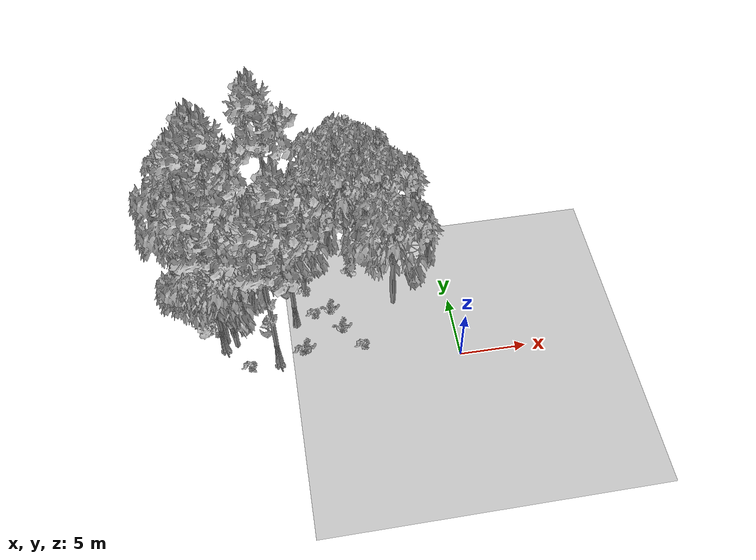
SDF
<sdf version="1.7">
 <world name="default">
  <model name="ground_plane">
   <static>1</static>
   <link name="link">
    <collision name="collision">
     <pose>-50 0 0 0 -0 0</pose>
     <geometry><plane><normal>0 0 1</normal><size>80 80</size></plane></geometry>
     <surface><contact><ode><min_depth>0.01</min_depth><max_vel>0</max_vel></ode></contact></surface>
    </collision>
    <visual name="grass">
     <cast_shadows>0</cast_shadows>
     <geometry>
      <mesh>
       <scale>0.46714285714285714 0.46714285714285714 0.1</scale>
       <uri>file://grass_plane/meshes/grass_plane.dae</uri>
      </mesh>
     </geometry>
    </visual>
   </link>
  </model>
  <model name="Tree 18">
   <static>1</static>
   <pose>-17.58918415399928 3.471792968988524 0 1.57079 -0 0</pose>
   <link name="link">
    <collision name="collision">
     <geometry><mesh><scale>3.5 5 3.5</scale><uri>model://tree_9/meshes/tree_9.obj</uri></mesh></geometry>
    </collision>
    <visual name="visual">
     <geometry><mesh><scale>3.5 5 3.5</scale><uri>model://tree_9/meshes/tree_9.obj</uri></mesh></geometry>
    </visual>
   </link>
  </model>
  <model name="Tree 19">
   <static>1</static>
   <pose>-18.112532954256856 8.733711655006111 0 1.57079 -0 0</pose>
   <link name="link">
    <collision name="collision">
     <geometry><mesh><scale>3.5 5 3.5</scale><uri>model://tree_9/meshes/tree_9.obj</uri></mesh></geometry>
    </collision>
    <visual name="visual">
     <geometry><mesh><scale>3.5 5 3.5</scale><uri>model://tree_9/meshes/tree_9.obj</uri></mesh></geometry>
    </visual>
   </link>
  </model>
  <model name="Tree 28">
   <static>1</static>
   <pose>-11.109174213286632 7.824460218635878 0 1.57079 -0 0</pose>
   <link name="link">
    <collision name="collision">
     <geometry><mesh><scale>3.5 5 3.5</scale><uri>model://tree_2/meshes/tree_2.obj</uri></mesh></geometry>
    </collision>
    <visual name="visual">
     <geometry><mesh><scale>3.5 5 3.5</scale><uri>model://tree_2/meshes/tree_2.obj</uri></mesh></geometry>
    </visual>
   </link>
  </model>
  <model name="Tree 68">
   <static>1</static>
   <pose>-13.645216727375288 1.5163530789158273 0 1.57079 -0 0</pose>
   <link name="link">
    <collision name="collision">
     <geometry><mesh><scale>3.5 5 3.5</scale><uri>model://tree_9/meshes/tree_9.obj</uri></mesh></geometry>
    </collision>
    <visual name="visual">
     <geometry><mesh><scale>3.5 5 3.5</scale><uri>model://tree_9/meshes/tree_9.obj</uri></mesh></geometry>
    </visual>
   </link>
  </model>
  <model name="Tree 104">
   <static>1</static>
   <pose>-12.006702500617696 4.661444653478988 0 1.57079 -0 0</pose>
   <link name="link">
    <collision name="collision">
     <geometry><mesh><scale>3.5 5 3.5</scale><uri>model://tree_9/meshes/tree_9.obj</uri></mesh></geometry>
    </collision>
    <visual name="visual">
     <geometry><mesh><scale>3.5 5 3.5</scale><uri>model://tree_9/meshes/tree_9.obj</uri></mesh></geometry>
    </visual>
   </link>
  </model>
  <model name="Tree 123">
   <static>1</static>
   <pose>-16.893930237728235 4.317296271349193 0 1.57079 -0 0</pose>
   <link name="link">
    <collision name="collision">
     <geometry><mesh><scale>3.5 5 3.5</scale><uri>model://tree_2/meshes/tree_2.obj</uri></mesh></geometry>
    </collision>
    <visual name="visual">
     <geometry><mesh><scale>3.5 5 3.5</scale><uri>model://tree_2/meshes/tree_2.obj</uri></mesh></geometry>
    </visual>
   </link>
  </model>
  <model name="Tree 158">
   <static>1</static>
   <pose>-16.37620693387407 10.21964849119206 0 1.57079 -0 0</pose>
   <link name="link">
    <collision name="collision">
     <geometry><mesh><scale>3.5 5 3.5</scale><uri>model://tree_9/meshes/tree_9.obj</uri></mesh></geometry>
    </collision>
    <visual name="visual">
     <geometry><mesh><scale>3.5 5 3.5</scale><uri>model://tree_9/meshes/tree_9.obj</uri></mesh></geometry>
    </visual>
   </link>
  </model>
  <model name="Tree 171">
   <static>1</static>
   <pose>-7.32146004804688 10.34876763070691 0 1.57079 -0 0</pose>
   <link name="link">
    <collision name="collision">
     <geometry><mesh><scale>3.5 5 3.5</scale><uri>model://tree_2/meshes/tree_2.obj</uri></mesh></geometry>
    </collision>
    <visual name="visual">
     <geometry><mesh><scale>3.5 5 3.5</scale><uri>model://tree_2/meshes/tree_2.obj</uri></mesh></geometry>
    </visual>
   </link>
  </model>
  <model name="Tree 186">
   <static>1</static>
   <pose>-12.569851200763186 7.49511392362362 0 1.57079 -0 0</pose>
   <link name="link">
    <collision name="collision">
     <geometry><mesh><scale>3.5 5 3.5</scale><uri>model://tree_2/meshes/tree_2.obj</uri></mesh></geometry>
    </collision>
    <visual name="visual">
     <geometry><mesh><scale>3.5 5 3.5</scale><uri>model://tree_2/meshes/tree_2.obj</uri></mesh></geometry>
    </visual>
   </link>
  </model>
  <model name="Tree 240">
   <static>1</static>
   <pose>-18.806868439616196 9.059733554559308 0 1.57079 -0 0</pose>
   <link name="link">
    <collision name="collision">
     <geometry><mesh><scale>3.5 5 3.5</scale><uri>model://tree_2/meshes/tree_2.obj</uri></mesh></geometry>
    </collision>
    <visual name="visual">
     <geometry><mesh><scale>3.5 5 3.5</scale><uri>model://tree_2/meshes/tree_2.obj</uri></mesh></geometry>
    </visual>
   </link>
  </model>
  <model name="Tree 261">
   <static>1</static>
   <pose>-4.354681947410455 5.620332886805166 0 1.57079 -0 0</pose>
   <link name="link">
    <collision name="collision">
     <geometry><mesh><scale>3.5 5 3.5</scale><uri>model://tree_2/meshes/tree_2.obj</uri></mesh></geometry>
    </collision>
    <visual name="visual">
     <geometry><mesh><scale>3.5 5 3.5</scale><uri>model://tree_2/meshes/tree_2.obj</uri></mesh></geometry>
    </visual>
   </link>
  </model>
  <model name="Tree 272">
   <static>1</static>
   <pose>-17.134975201088437 10.970905959021373 0 1.57079 -0 0</pose>
   <link name="link">
    <collision name="collision">
     <geometry><mesh><scale>3.5 5 3.5</scale><uri>model://tree_9/meshes/tree_9.obj</uri></mesh></geometry>
    </collision>
    <visual name="visual">
     <geometry><mesh><scale>3.5 5 3.5</scale><uri>model://tree_9/meshes/tree_9.obj</uri></mesh></geometry>
    </visual>
   </link>
  </model>
  <model name="Tree 310">
   <static>1</static>
   <pose>-12.90157255862983 13.383570503775786 0 1.57079 -0 0</pose>
   <link name="link">
    <collision name="collision">
     <geometry><mesh><scale>3.5 5 3.5</scale><uri>model://tree_9/meshes/tree_9.obj</uri></mesh></geometry>
    </collision>
    <visual name="visual">
     <geometry><mesh><scale>3.5 5 3.5</scale><uri>model://tree_9/meshes/tree_9.obj</uri></mesh></geometry>
    </visual>
   </link>
  </model>
  <model name="Tree 335">
   <static>1</static>
   <pose>-8.483761706993207 12.09060599628063 0 1.57079 -0 0</pose>
   <link name="link">
    <collision name="collision">
     <geometry><mesh><scale>3.5 5 3.5</scale><uri>model://tree_2/meshes/tree_2.obj</uri></mesh></geometry>
    </collision>
    <visual name="visual">
     <geometry><mesh><scale>3.5 5 3.5</scale><uri>model://tree_2/meshes/tree_2.obj</uri></mesh></geometry>
    </visual>
   </link>
  </model>
  <model name="Tree 342">
   <static>1</static>
   <pose>-19.24218657267701 12.365773465757258 0 1.57079 -0 0</pose>
   <link name="link">
    <collision name="collision">
     <geometry><mesh><scale>3.5 5 3.5</scale><uri>model://tree_2/meshes/tree_2.obj</uri></mesh></geometry>
    </collision>
    <visual name="visual">
     <geometry><mesh><scale>3.5 5 3.5</scale><uri>model://tree_2/meshes/tree_2.obj</uri></mesh></geometry>
    </visual>
   </link>
  </model>
  <model name="Tree 402">
   <static>1</static>
   <pose>-17.44945227126329 3.9603339065239 0 1.57079 -0 0</pose>
   <link name="link">
    <collision name="collision">
     <geometry><mesh><scale>3.5 5 3.5</scale><uri>model://tree_2/meshes/tree_2.obj</uri></mesh></geometry>
    </collision>
    <visual name="visual">
     <geometry><mesh><scale>3.5 5 3.5</scale><uri>model://tree_2/meshes/tree_2.obj</uri></mesh></geometry>
    </visual>
   </link>
  </model>
  <model name="Tree 406">
   <static>1</static>
   <pose>-14.256591895682355 6.695178482633359 0 1.57079 -0 0</pose>
   <link name="link">
    <collision name="collision">
     <geometry><mesh><scale>3.5 5 3.5</scale><uri>model://tree_2/meshes/tree_2.obj</uri></mesh></geometry>
    </collision>
    <visual name="visual">
     <geometry><mesh><scale>3.5 5 3.5</scale><uri>model://tree_2/meshes/tree_2.obj</uri></mesh></geometry>
    </visual>
   </link>
  </model>
  <model name="Tree 513">
   <static>1</static>
   <pose>-16.752196605908598 3.5664650199842924 0 1.57079 -0 0</pose>
   <link name="link">
    <collision name="collision">
     <geometry><mesh><scale>3.5 5 3.5</scale><uri>model://tree_2/meshes/tree_2.obj</uri></mesh></geometry>
    </collision>
    <visual name="visual">
     <geometry><mesh><scale>3.5 5 3.5</scale><uri>model://tree_2/meshes/tree_2.obj</uri></mesh></geometry>
    </visual>
   </link>
  </model>
  <model name="Tree 531">
   <static>1</static>
   <pose>-6.351122432309765 13.40825771113225 0 1.57079 -0 0</pose>
   <link name="link">
    <collision name="collision">
     <geometry><mesh><scale>3.5 5 3.5</scale><uri>model://tree_2/meshes/tree_2.obj</uri></mesh></geometry>
    </collision>
    <visual name="visual">
     <geometry><mesh><scale>3.5 5 3.5</scale><uri>model://tree_2/meshes/tree_2.obj</uri></mesh></geometry>
    </visual>
   </link>
  </model>
  <model name="Tree 577">
   <static>1</static>
   <pose>-4.445727288195464 10.442250638948643 0 1.57079 -0 0</pose>
   <link name="link">
    <collision name="collision">
     <geometry><mesh><scale>3.5 5 3.5</scale><uri>model://tree_2/meshes/tree_2.obj</uri></mesh></geometry>
    </collision>
    <visual name="visual">
     <geometry><mesh><scale>3.5 5 3.5</scale><uri>model://tree_2/meshes/tree_2.obj</uri></mesh></geometry>
    </visual>
   </link>
  </model>
  <model name="Bush 25">
   <static>1</static>
   <pose>-16.866485050219776 11.29586082485281 0 1.57079 -0 0</pose>
   <link name="link">
    <collision name="collision">
     <geometry><mesh><scale>2 2 2</scale><uri>model://bush_2/meshes/bush_2.obj</uri></mesh></geometry>
     <surface><contact><collide_without_contact>false</collide_without_contact></contact></surface>
    </collision>
    <visual name="visual">
     <geometry><mesh><scale>2 2 2</scale><uri>model://bush_2/meshes/bush_2.obj</uri></mesh></geometry>
    </visual>
   </link>
  </model>
  <model name="Bush 39">
   <static>1</static>
   <pose>-7.242722503135855 2.0251139537489493 0 1.57079 -0 0</pose>
   <link name="link">
    <collision name="collision">
     <geometry><mesh><scale>2 2 2</scale><uri>model://bush_2/meshes/bush_2.obj</uri></mesh></geometry>
     <surface><contact><collide_without_contact>false</collide_without_contact></contact></surface>
    </collision>
    <visual name="visual">
     <geometry><mesh><scale>2 2 2</scale><uri>model://bush_2/meshes/bush_2.obj</uri></mesh></geometry>
    </visual>
   </link>
  </model>
  <model name="Bush 55">
   <static>1</static>
   <pose>-15.888370329472192 1.4861845884676654 0 1.57079 -0 0</pose>
   <link name="link">
    <collision name="collision">
     <geometry><mesh><scale>2 2 2</scale><uri>model://bush_2/meshes/bush_2.obj</uri></mesh></geometry>
     <surface><contact><collide_without_contact>false</collide_without_contact></contact></surface>
    </collision>
    <visual name="visual">
     <geometry><mesh><scale>2 2 2</scale><uri>model://bush_2/meshes/bush_2.obj</uri></mesh></geometry>
    </visual>
   </link>
  </model>
  <model name="Bush 64">
   <static>1</static>
   <pose>-19.21845745772241 10.778742724829243 0 1.57079 -0 0</pose>
   <link name="link">
    <collision name="collision">
     <geometry><mesh><scale>2 2 2</scale><uri>model://bush_2/meshes/bush_2.obj</uri></mesh></geometry>
     <surface><contact><collide_without_contact>false</collide_without_contact></contact></surface>
    </collision>
    <visual name="visual">
     <geometry><mesh><scale>2 2 2</scale><uri>model://bush_2/meshes/bush_2.obj</uri></mesh></geometry>
    </visual>
   </link>
  </model>
  <model name="Bush 145">
   <static>1</static>
   <pose>-11.934037609386095 2.288056306821666 0 1.57079 -0 0</pose>
   <link name="link">
    <collision name="collision">
     <geometry><mesh><scale>2 2 2</scale><uri>model://bush_2/meshes/bush_2.obj</uri></mesh></geometry>
     <surface><contact><collide_without_contact>false</collide_without_contact></contact></surface>
    </collision>
    <visual name="visual">
     <geometry><mesh><scale>2 2 2</scale><uri>model://bush_2/meshes/bush_2.obj</uri></mesh></geometry>
    </visual>
   </link>
  </model>
  <model name="Bush 149">
   <static>1</static>
   <pose>-12.651011820345861 12.36895778727395 0 1.57079 -0 0</pose>
   <link name="link">
    <collision name="collision">
     <geometry><mesh><scale>2 2 2</scale><uri>model://bush_1/meshes/bush_1.obj</uri></mesh></geometry>
     <surface><contact><collide_without_contact>false</collide_without_contact></contact></surface>
    </collision>
    <visual name="visual">
     <geometry><mesh><scale>2 2 2</scale><uri>model://bush_1/meshes/bush_1.obj</uri></mesh></geometry>
    </visual>
   </link>
  </model>
  <model name="Bush 153">
   <static>1</static>
   <pose>-8.568800681444685 3.46081197211803 0 1.57079 -0 0</pose>
   <link name="link">
    <collision name="collision">
     <geometry><mesh><scale>2 2 2</scale><uri>model://bush_4/meshes/bush_4.obj</uri></mesh></geometry>
     <surface><contact><collide_without_contact>false</collide_without_contact></contact></surface>
    </collision>
    <visual name="visual">
     <geometry><mesh><scale>2 2 2</scale><uri>model://bush_4/meshes/bush_4.obj</uri></mesh></geometry>
    </visual>
   </link>
  </model>
  <model name="Bush 175">
   <static>1</static>
   <pose>-11.124482877335009 7.719164817464645 0 1.57079 -0 0</pose>
   <link name="link">
    <collision name="collision">
     <geometry><mesh><scale>2 2 2</scale><uri>model://bush_2/meshes/bush_2.obj</uri></mesh></geometry>
     <surface><contact><collide_without_contact>false</collide_without_contact></contact></surface>
    </collision>
    <visual name="visual">
     <geometry><mesh><scale>2 2 2</scale><uri>model://bush_2/meshes/bush_2.obj</uri></mesh></geometry>
    </visual>
   </link>
  </model>
  <model name="Bush 213">
   <static>1</static>
   <pose>-11.51912639759368 2.0379728310191183 0 1.57079 -0 0</pose>
   <link name="link">
    <collision name="collision">
     <geometry><mesh><scale>2 2 2</scale><uri>model://bush_4/meshes/bush_4.obj</uri></mesh></geometry>
     <surface><contact><collide_without_contact>false</collide_without_contact></contact></surface>
    </collision>
    <visual name="visual">
     <geometry><mesh><scale>2 2 2</scale><uri>model://bush_4/meshes/bush_4.obj</uri></mesh></geometry>
    </visual>
   </link>
  </model>
  <model name="Bush 244">
   <static>1</static>
   <pose>-4.348236685268226 12.53481985709115 0 1.57079 -0 0</pose>
   <link name="link">
    <collision name="collision">
     <geometry><mesh><scale>2 2 2</scale><uri>model://bush_1/meshes/bush_1.obj</uri></mesh></geometry>
     <surface><contact><collide_without_contact>false</collide_without_contact></contact></surface>
    </collision>
    <visual name="visual">
     <geometry><mesh><scale>2 2 2</scale><uri>model://bush_1/meshes/bush_1.obj</uri></mesh></geometry>
    </visual>
   </link>
  </model>
  <model name="Bush 250">
   <static>1</static>
   <pose>-15.254516188298108 8.589222335727044 0 1.57079 -0 0</pose>
   <link name="link">
    <collision name="collision">
     <geometry><mesh><scale>2 2 2</scale><uri>model://bush_2/meshes/bush_2.obj</uri></mesh></geometry>
     <surface><contact><collide_without_contact>false</collide_without_contact></contact></surface>
    </collision>
    <visual name="visual">
     <geometry><mesh><scale>2 2 2</scale><uri>model://bush_2/meshes/bush_2.obj</uri></mesh></geometry>
    </visual>
   </link>
  </model>
  <model name="Bush 271">
   <static>1</static>
   <pose>-16.01849938992729 9.507432873835455 0 1.57079 -0 0</pose>
   <link name="link">
    <collision name="collision">
     <geometry><mesh><scale>2 2 2</scale><uri>model://bush_5/meshes/bush_5.obj</uri></mesh></geometry>
     <surface><contact><collide_without_contact>false</collide_without_contact></contact></surface>
    </collision>
    <visual name="visual">
     <geometry><mesh><scale>2 2 2</scale><uri>model://bush_5/meshes/bush_5.obj</uri></mesh></geometry>
    </visual>
   </link>
  </model>
  <model name="Bush 273">
   <static>1</static>
   <pose>-14.131508520549268 9.901045032193025 0 1.57079 -0 0</pose>
   <link name="link">
    <collision name="collision">
     <geometry><mesh><scale>2 2 2</scale><uri>model://bush_2/meshes/bush_2.obj</uri></mesh></geometry>
     <surface><contact><collide_without_contact>false</collide_without_contact></contact></surface>
    </collision>
    <visual name="visual">
     <geometry><mesh><scale>2 2 2</scale><uri>model://bush_2/meshes/bush_2.obj</uri></mesh></geometry>
    </visual>
   </link>
  </model>
  <model name="Bush 371">
   <static>1</static>
   <pose>-18.898215289179383 4.813624517120928 0 1.57079 -0 0</pose>
   <link name="link">
    <collision name="collision">
     <geometry><mesh><scale>2 2 2</scale><uri>model://bush_1/meshes/bush_1.obj</uri></mesh></geometry>
     <surface><contact><collide_without_contact>false</collide_without_contact></contact></surface>
    </collision>
    <visual name="visual">
     <geometry><mesh><scale>2 2 2</scale><uri>model://bush_1/meshes/bush_1.obj</uri></mesh></geometry>
    </visual>
   </link>
  </model>
  <model name="Bush 396">
   <static>1</static>
   <pose>-18.175597510625437 4.970818132619222 0 1.57079 -0 0</pose>
   <link name="link">
    <collision name="collision">
     <geometry><mesh><scale>2 2 2</scale><uri>model://bush_2/meshes/bush_2.obj</uri></mesh></geometry>
     <surface><contact><collide_without_contact>false</collide_without_contact></contact></surface>
    </collision>
    <visual name="visual">
     <geometry><mesh><scale>2 2 2</scale><uri>model://bush_2/meshes/bush_2.obj</uri></mesh></geometry>
    </visual>
   </link>
  </model>
  <model name="Bush 409">
   <static>1</static>
   <pose>-9.287401153901563 5.3278690425734965 0 1.57079 -0 0</pose>
   <link name="link">
    <collision name="collision">
     <geometry><mesh><scale>2 2 2</scale><uri>model://bush_4/meshes/bush_4.obj</uri></mesh></geometry>
     <surface><contact><collide_without_contact>false</collide_without_contact></contact></surface>
    </collision>
    <visual name="visual">
     <geometry><mesh><scale>2 2 2</scale><uri>model://bush_4/meshes/bush_4.obj</uri></mesh></geometry>
    </visual>
   </link>
  </model>
  <model name="Bush 430">
   <static>1</static>
   <pose>-12.08060800872584 13.356740136139855 0 1.57079 -0 0</pose>
   <link name="link">
    <collision name="collision">
     <geometry><mesh><scale>2 2 2</scale><uri>model://bush_2/meshes/bush_2.obj</uri></mesh></geometry>
     <surface><contact><collide_without_contact>false</collide_without_contact></contact></surface>
    </collision>
    <visual name="visual">
     <geometry><mesh><scale>2 2 2</scale><uri>model://bush_2/meshes/bush_2.obj</uri></mesh></geometry>
    </visual>
   </link>
  </model>
  <model name="Bush 466">
   <static>1</static>
   <pose>-16.777516945686383 5.680824856032544 0 1.57079 -0 0</pose>
   <link name="link">
    <collision name="collision">
     <geometry><mesh><scale>2 2 2</scale><uri>model://bush_2/meshes/bush_2.obj</uri></mesh></geometry>
     <surface><contact><collide_without_contact>false</collide_without_contact></contact></surface>
    </collision>
    <visual name="visual">
     <geometry><mesh><scale>2 2 2</scale><uri>model://bush_2/meshes/bush_2.obj</uri></mesh></geometry>
    </visual>
   </link>
  </model>
  <model name="Bush 542">
   <static>1</static>
   <pose>-13.76388282738013 11.863205216446964 0 1.57079 -0 0</pose>
   <link name="link">
    <collision name="collision">
     <geometry><mesh><scale>2 2 2</scale><uri>model://bush_2/meshes/bush_2.obj</uri></mesh></geometry>
     <surface><contact><collide_without_contact>false</collide_without_contact></contact></surface>
    </collision>
    <visual name="visual">
     <geometry><mesh><scale>2 2 2</scale><uri>model://bush_2/meshes/bush_2.obj</uri></mesh></geometry>
    </visual>
   </link>
  </model>
  <model name="Bush 569">
   <static>1</static>
   <pose>-6.079648111381552 10.746752129301917 0 1.57079 -0 0</pose>
   <link name="link">
    <collision name="collision">
     <geometry><mesh><scale>2 2 2</scale><uri>model://bush_0/meshes/bush_0.obj</uri></mesh></geometry>
     <surface><contact><collide_without_contact>false</collide_without_contact></contact></surface>
    </collision>
    <visual name="visual">
     <geometry><mesh><scale>2 2 2</scale><uri>model://bush_0/meshes/bush_0.obj</uri></mesh></geometry>
    </visual>
   </link>
  </model>
  <model name="Bush 572">
   <static>1</static>
   <pose>-19.025322640396706 10.043267542416679 0 1.57079 -0 0</pose>
   <link name="link">
    <collision name="collision">
     <geometry><mesh><scale>2 2 2</scale><uri>model://bush_5/meshes/bush_5.obj</uri></mesh></geometry>
     <surface><contact><collide_without_contact>false</collide_without_contact></contact></surface>
    </collision>
    <visual name="visual">
     <geometry><mesh><scale>2 2 2</scale><uri>model://bush_5/meshes/bush_5.obj</uri></mesh></geometry>
    </visual>
   </link>
  </model>
  <model name="Bush 606">
   <static>1</static>
   <pose>-10.629524353173608 5.474481540133212 0 1.57079 -0 0</pose>
   <link name="link">
    <collision name="collision">
     <geometry><mesh><scale>2 2 2</scale><uri>model://bush_2/meshes/bush_2.obj</uri></mesh></geometry>
     <surface><contact><collide_without_contact>false</collide_without_contact></contact></surface>
    </collision>
    <visual name="visual">
     <geometry><mesh><scale>2 2 2</scale><uri>model://bush_2/meshes/bush_2.obj</uri></mesh></geometry>
    </visual>
   </link>
  </model>
  <model name="Bush 631">
   <static>1</static>
   <pose>-7.214761318728524 8.577103534122415 0 1.57079 -0 0</pose>
   <link name="link">
    <collision name="collision">
     <geometry><mesh><scale>2 2 2</scale><uri>model://bush_0/meshes/bush_0.obj</uri></mesh></geometry>
     <surface><contact><collide_without_contact>false</collide_without_contact></contact></surface>
    </collision>
    <visual name="visual">
     <geometry><mesh><scale>2 2 2</scale><uri>model://bush_0/meshes/bush_0.obj</uri></mesh></geometry>
    </visual>
   </link>
  </model>
  <model name="Bush 636">
   <static>1</static>
   <pose>-10.640200174187665 8.535490901494953 0 1.57079 -0 0</pose>
   <link name="link">
    <collision name="collision">
     <geometry><mesh><scale>2 2 2</scale><uri>model://bush_5/meshes/bush_5.obj</uri></mesh></geometry>
     <surface><contact><collide_without_contact>false</collide_without_contact></contact></surface>
    </collision>
    <visual name="visual">
     <geometry><mesh><scale>2 2 2</scale><uri>model://bush_5/meshes/bush_5.obj</uri></mesh></geometry>
    </visual>
   </link>
  </model>
  <model name="Bush 637">
   <static>1</static>
   <pose>-17.464943389825336 8.79591262846975 0 1.57079 -0 0</pose>
   <link name="link">
    <collision name="collision">
     <geometry><mesh><scale>2 2 2</scale><uri>model://bush_2/meshes/bush_2.obj</uri></mesh></geometry>
     <surface><contact><collide_without_contact>false</collide_without_contact></contact></surface>
    </collision>
    <visual name="visual">
     <geometry><mesh><scale>2 2 2</scale><uri>model://bush_2/meshes/bush_2.obj</uri></mesh></geometry>
    </visual>
   </link>
  </model>
 </world>
</sdf>
